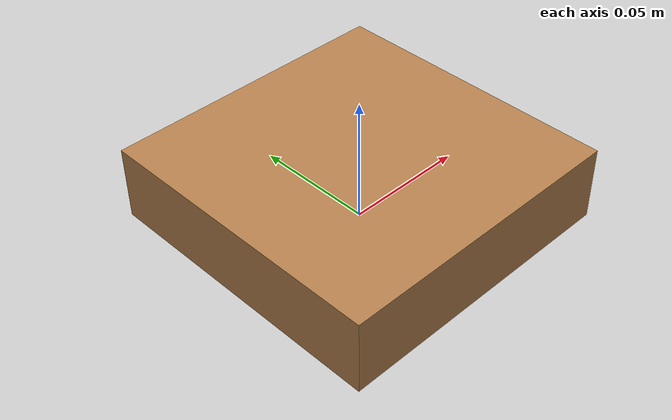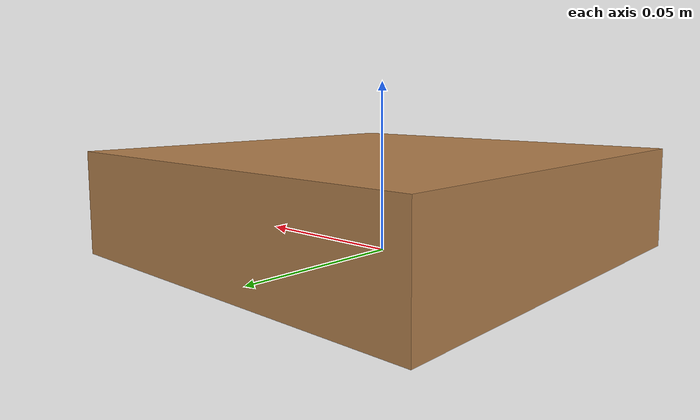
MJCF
<mujoco>
    <compiler angle="radian" inertiafromgeom="auto"/>

    <asset>
        <texture file="../textures/seamless_wood_planks_floor.png" type="2d" name="tex-wood"/>
        <material name="wood_material" reflectance="0.3" shininess="0.2" specular="0.1" texrepeat="2 2" texture="tex-wood" texuniform="true"/>
    </asset>

    <worldbody>
        <body pos="0 0 0.015">
            <body name="object">

                <inertial pos="0 0 0" mass="0.4" diaginertia="0.002 0.002 0.0002"/>

                <geom type="box" size="0.06 0.06 0.015"
                      material="wood_material"
                      group="0"
                      friction="0.8 0.3 0.1"
                      solimp="0.998 0.998 0.001"
                      solref="0.001 1"/>

                <geom type="box" size="0.06 0.06 0.015"
                      material="wood_material"
                      group="1"
                      conaffinity="0"
                      contype="0"/>
            </body>

            <site rgba="0 0 0 0" size="0.0025" pos="0 0 -0.015" name="bottom_site" />
            <site rgba="0 0 0 0" size="0.0025" pos="0 0 0.015" name="top_site" />
            <site rgba="0 0 0 0" size="0.0025" pos="0.06 0 0" name="horizontal_radius_site" />
        </body>
    </worldbody>
</mujoco>
